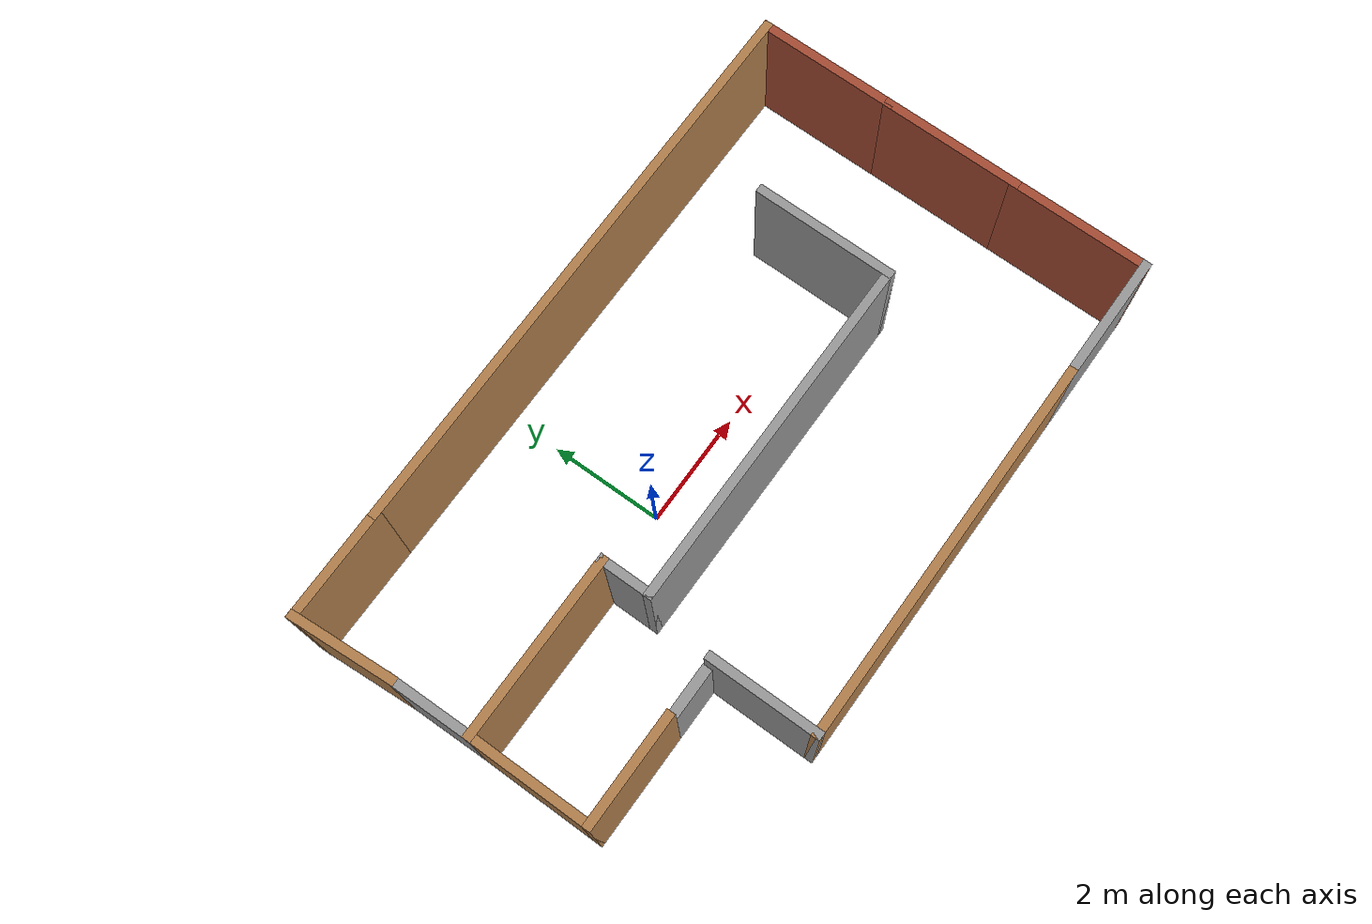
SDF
<?xml version='1.0'?>
<sdf version='1.6'>
  <model name='roomba3house'>
    <pose frame=''>1.20768 -0.612683 0 0 -0 0</pose>
    <link name='Door_0'>
      <collision name='Door_0_Collision'>
        <geometry>
          <box>
            <size>0.9 0.17 2</size>
          </box>
        </geometry>
        <pose frame=''>0 0 1 0 -0 0</pose>
      </collision>
      <visual name='Door_0_Visual'>
        <pose frame=''>0 0 1 0 -0 0</pose>
        <geometry>
          <box>
            <size>0.9 0.17 2</size>
          </box>
        </geometry>
        <material>
          <script>
            <uri>file://media/materials/scripts/gazebo.material</uri>
            <name>Gazebo/Grey</name>
          </script>
        </material>
      </visual>
      <pose frame=''>-3.35768 -1.66732 0 0 -0 0</pose>
    </link>
    <link name='Wall_0'>
      <collision name='Wall_0_Collision'>
        <geometry>
          <box>
            <size>2 0.15 2.5</size>
          </box>
        </geometry>
        <pose frame=''>0 0 1.25 0 -0 0</pose>
      </collision>
      <visual name='Wall_0_Visual'>
        <pose frame=''>0 0 1.25 0 -0 0</pose>
        <geometry>
          <box>
            <size>2 0.15 2.5</size>
          </box>
        </geometry>
        <material>
          <script>
            <uri>file://media/materials/scripts/gazebo.material</uri>
            <name>Gazebo/Wood</name>
          </script>
          <ambient>1 1 1 1</ambient>
        </material>
        <meta>
          <layer>0</layer>
        </meta>
      </visual>
      <pose frame=''>-4.79268 -1.67732 0 0 -0 3.14159</pose>
    </link>
    <link name='Wall_1'>
      <collision name='Wall_1_Collision'>
        <geometry>
          <box>
            <size>2.25 0.15 2.5</size>
          </box>
        </geometry>
        <pose frame=''>0 0 1.25 0 -0 0</pose>
      </collision>
      <visual name='Wall_1_Visual'>
        <pose frame=''>0 0 1.25 0 -0 0</pose>
        <geometry>
          <box>
            <size>2.25 0.15 2.5</size>
          </box>
        </geometry>
        <material>
          <script>
            <uri>file://media/materials/scripts/gazebo.material</uri>
            <name>Gazebo/Wood</name>
          </script>
          <ambient>1 1 1 1</ambient>
        </material>
        <meta>
          <layer>0</layer>
        </meta>
      </visual>
      <pose frame=''>-5.71768 -0.627317 0 0 -0 1.5708</pose>
    </link>
    <link name='Wall_10'>
      <collision name='Wall_10_Collision'>
        <geometry>
          <box>
            <size>2 0.15 2.5</size>
          </box>
        </geometry>
        <pose frame=''>0 0 1.25 0 -0 0</pose>
      </collision>
      <visual name='Wall_10_Visual'>
        <pose frame=''>0 0 1.25 0 -0 0</pose>
        <geometry>
          <box>
            <size>2 0.15 2.5</size>
          </box>
        </geometry>
        <material>
          <script>
            <uri>file://media/materials/scripts/gazebo.material</uri>
            <name>Gazebo/Grey</name>
          </script>
          <ambient>1 1 1 1</ambient>
        </material>
        <meta>
          <layer>0</layer>
        </meta>
      </visual>
      <pose frame=''>-2.84768 -2.60232 0 0 0 -1.5708</pose>
    </link>
    <link name='Wall_11'>
      <collision name='Wall_11_Collision'>
        <geometry>
          <box>
            <size>6.75 0.15 2.5</size>
          </box>
        </geometry>
        <pose frame=''>0 0 1.25 0 -0 0</pose>
      </collision>
      <visual name='Wall_11_Visual'>
        <pose frame=''>0 0 1.25 0 -0 0</pose>
        <geometry>
          <box>
            <size>6.75 0.15 2.5</size>
          </box>
        </geometry>
        <material>
          <script>
            <uri>file://media/materials/scripts/gazebo.material</uri>
            <name>Gazebo/Wood</name>
          </script>
          <ambient>1 1 1 1</ambient>
        </material>
        <meta>
          <layer>0</layer>
        </meta>
      </visual>
      <pose frame=''>0.452317 -3.52732 0 0 -0 0</pose>
    </link>
    <link name='Wall_13'>
      <collision name='Wall_13_Collision'>
        <geometry>
          <box>
            <size>2.25 0.15 2.5</size>
          </box>
        </geometry>
        <pose frame=''>0 0 1.25 0 -0 0</pose>
      </collision>
      <visual name='Wall_13_Visual'>
        <pose frame=''>0 0 1.25 0 -0 0</pose>
        <geometry>
          <box>
            <size>2.25 0.15 2.5</size>
          </box>
        </geometry>
        <material>
          <script>
            <uri>file://media/materials/scripts/gazebo.material</uri>
            <name>Gazebo/Grey</name>
          </script>
          <ambient>1 1 1 1</ambient>
        </material>
        <meta>
          <layer>0</layer>
        </meta>
      </visual>
      <pose frame=''>4.80232 -3.52732 0 0 -0 0</pose>
    </link>
    <link name='Wall_14'>
      <collision name='Wall_14_Collision'>
        <geometry>
          <box>
            <size>2.5 0.15 2.5</size>
          </box>
        </geometry>
        <pose frame=''>0 0 1.25 0 -0 0</pose>
      </collision>
      <visual name='Wall_14_Visual'>
        <pose frame=''>0 0 1.25 0 -0 0</pose>
        <geometry>
          <box>
            <size>2.5 0.15 2.5</size>
          </box>
        </geometry>
        <material>
          <script>
            <uri>file://media/materials/scripts/gazebo.material</uri>
            <name>Gazebo/Bricks</name>
          </script>
          <ambient>1 1 1 1</ambient>
        </material>
        <meta>
          <layer>0</layer>
        </meta>
      </visual>
      <pose frame=''>5.85232 -2.35232 0 0 -0 1.5708</pose>
    </link>
    <link name='Wall_16'>
      <collision name='Wall_16_Collision'>
        <geometry>
          <box>
            <size>2.5 0.15 2.5</size>
          </box>
        </geometry>
        <pose frame=''>0 0 1.25 0 -0 0</pose>
      </collision>
      <visual name='Wall_16_Visual'>
        <pose frame=''>0 0 1.25 0 -0 0</pose>
        <geometry>
          <box>
            <size>2.5 0.15 2.5</size>
          </box>
        </geometry>
        <material>
          <script>
            <uri>file://media/materials/scripts/gazebo.material</uri>
            <name>Gazebo/Bricks</name>
          </script>
          <ambient>1 1 1 1</ambient>
        </material>
        <meta>
          <layer>0</layer>
        </meta>
      </visual>
      <pose frame=''>5.85232 -0.002317 0 0 -0 1.5708</pose>
    </link>
    <link name='Wall_18'>
      <collision name='Wall_18_Collision'>
        <geometry>
          <box>
            <size>2.5 0.15 2.5</size>
          </box>
        </geometry>
        <pose frame=''>0 0 1.25 0 -0 0</pose>
      </collision>
      <visual name='Wall_18_Visual'>
        <pose frame=''>0 0 1.25 0 -0 0</pose>
        <geometry>
          <box>
            <size>2.5 0.15 2.5</size>
          </box>
        </geometry>
        <material>
          <script>
            <uri>file://media/materials/scripts/gazebo.material</uri>
            <name>Gazebo/Bricks</name>
          </script>
          <ambient>1 1 1 1</ambient>
        </material>
        <meta>
          <layer>0</layer>
        </meta>
      </visual>
      <pose frame=''>5.85232 2.34768 0 0 -0 1.5708</pose>
    </link>
    <link name='Wall_20'>
      <collision name='Wall_20_Collision'>
        <geometry>
          <box>
            <size>10 0.15 2.5</size>
          </box>
        </geometry>
        <pose frame=''>0 0 1.25 0 -0 0</pose>
      </collision>
      <visual name='Wall_20_Visual'>
        <pose frame=''>0 0 1.25 0 -0 0</pose>
        <geometry>
          <box>
            <size>10 0.15 2.5</size>
          </box>
        </geometry>
        <material>
          <script>
            <uri>file://media/materials/scripts/gazebo.material</uri>
            <name>Gazebo/Wood</name>
          </script>
          <ambient>1 1 1 1</ambient>
        </material>
        <meta>
          <layer>0</layer>
        </meta>
      </visual>
      <pose frame=''>0.927317 3.52268 0 0 -0 3.14159</pose>
    </link>
    <link name='Wall_22'>
      <collision name='Wall_22_Collision'>
        <geometry>
          <box>
            <size>2 0.15 2.5</size>
          </box>
        </geometry>
        <pose frame=''>0 0 1.25 0 -0 0</pose>
      </collision>
      <visual name='Wall_22_Visual'>
        <pose frame=''>0 0 1.25 0 -0 0</pose>
        <geometry>
          <box>
            <size>2 0.15 2.5</size>
          </box>
        </geometry>
        <material>
          <script>
            <uri>file://media/materials/scripts/gazebo.material</uri>
            <name>Gazebo/Wood</name>
          </script>
          <ambient>1 1 1 1</ambient>
        </material>
        <meta>
          <layer>0</layer>
        </meta>
      </visual>
      <pose frame=''>-4.92268 3.52268 0 0 -0 3.14159</pose>
    </link>
    <link name='Wall_23'>
      <collision name='Wall_23_Collision'>
        <geometry>
          <box>
            <size>1.87351 0.15 2.5</size>
          </box>
        </geometry>
        <pose frame=''>0 0 1.25 0 -0 0</pose>
      </collision>
      <visual name='Wall_23_Visual'>
        <pose frame=''>0 0 1.25 0 -0 0</pose>
        <geometry>
          <box>
            <size>1.87351 0.15 2.5</size>
          </box>
        </geometry>
        <material>
          <script>
            <uri>file://media/materials/scripts/gazebo.material</uri>
            <name>Gazebo/Wood</name>
          </script>
          <ambient>1 1 1 1</ambient>
        </material>
        <meta>
          <layer>0</layer>
        </meta>
      </visual>
      <pose frame=''>-5.79268 2.66268 0 0 0 -1.50693</pose>
    </link>
    <link name='Wall_3'>
      <collision name='Wall_3_Collision'>
        <geometry>
          <box>
            <size>1.53015 0.15 2.5</size>
          </box>
        </geometry>
        <pose frame=''>0 0 1.25 0 -0 0</pose>
      </collision>
      <visual name='Wall_3_Visual'>
        <pose frame=''>0 0 1.25 0 -0 0</pose>
        <geometry>
          <box>
            <size>1.53015 0.15 2.5</size>
          </box>
        </geometry>
        <material>
          <script>
            <uri>file://media/materials/scripts/gazebo.material</uri>
            <name>Gazebo/Grey</name>
          </script>
          <ambient>1 1 1 1</ambient>
        </material>
        <meta>
          <layer>0</layer>
        </meta>
      </visual>
      <pose frame=''>-5.72768 1.11268 0 0 0 -1.55631</pose>
    </link>
    <link name='Wall_4'>
      <collision name='Wall_4_Collision'>
        <geometry>
          <box>
            <size>3.25 0.15 2.5</size>
          </box>
        </geometry>
        <pose frame=''>0 0 1.25 0 -0 0</pose>
      </collision>
      <visual name='Wall_4_Visual'>
        <pose frame=''>0 0 1.25 0 -0 0</pose>
        <geometry>
          <box>
            <size>3.25 0.15 2.5</size>
          </box>
        </geometry>
        <material>
          <script>
            <uri>file://media/materials/scripts/gazebo.material</uri>
            <name>Gazebo/Wood</name>
          </script>
          <ambient>1 1 1 1</ambient>
        </material>
        <meta>
          <layer>0</layer>
        </meta>
      </visual>
      <pose frame=''>-4.16768 0.422683 0 0 -0 0</pose>
    </link>
    <link name='Wall_5'>
      <collision name='Wall_5_Collision'>
        <geometry>
          <box>
            <size>1 0.15 2.5</size>
          </box>
        </geometry>
        <pose frame=''>0 0 1.25 0 -0 0</pose>
      </collision>
      <visual name='Wall_5_Visual'>
        <pose frame=''>0 0 1.25 0 -0 0</pose>
        <geometry>
          <box>
            <size>1 0.15 2.5</size>
          </box>
        </geometry>
        <material>
          <script>
            <uri>file://media/materials/scripts/gazebo.material</uri>
            <name>Gazebo/Grey</name>
          </script>
          <ambient>1 1 1 1</ambient>
        </material>
        <meta>
          <layer>0</layer>
        </meta>
      </visual>
      <pose frame=''>-2.61768 -0.002317 0 0 0 -1.5708</pose>
    </link>
    <link name='Wall_6'>
      <collision name='Wall_6_Collision'>
        <geometry>
          <box>
            <size>6.25 0.15 2.5</size>
          </box>
        </geometry>
        <pose frame=''>0 0 1.25 0 -0 0</pose>
      </collision>
      <visual name='Wall_6_Visual'>
        <pose frame=''>0 0 1.25 0 -0 0</pose>
        <geometry>
          <box>
            <size>6.25 0.15 2.5</size>
          </box>
        </geometry>
        <material>
          <script>
            <uri>file://media/materials/scripts/gazebo.material</uri>
            <name>Gazebo/Grey</name>
          </script>
          <ambient>1 1 1 1</ambient>
        </material>
        <meta>
          <layer>0</layer>
        </meta>
      </visual>
      <pose frame=''>0.432317 -0.427317 0 0 -0 0</pose>
    </link>
    <link name='Wall_8'>
      <collision name='Wall_8_Collision'>
        <geometry>
          <box>
            <size>2.5 0.15 2.5</size>
          </box>
        </geometry>
        <pose frame=''>0 0 1.25 0 -0 0</pose>
      </collision>
      <visual name='Wall_8_Visual'>
        <pose frame=''>0 0 1.25 0 -0 0</pose>
        <geometry>
          <box>
            <size>2.5 0.15 2.5</size>
          </box>
        </geometry>
        <material>
          <script>
            <uri>file://media/materials/scripts/gazebo.material</uri>
            <name>Gazebo/Grey</name>
          </script>
          <ambient>1 1 1 1</ambient>
        </material>
        <meta>
          <layer>0</layer>
        </meta>
      </visual>
      <pose frame=''>3.48232 0.747683 0 0 -0 1.5708</pose>
    </link>
    <static>1</static>
  </model>
</sdf>
